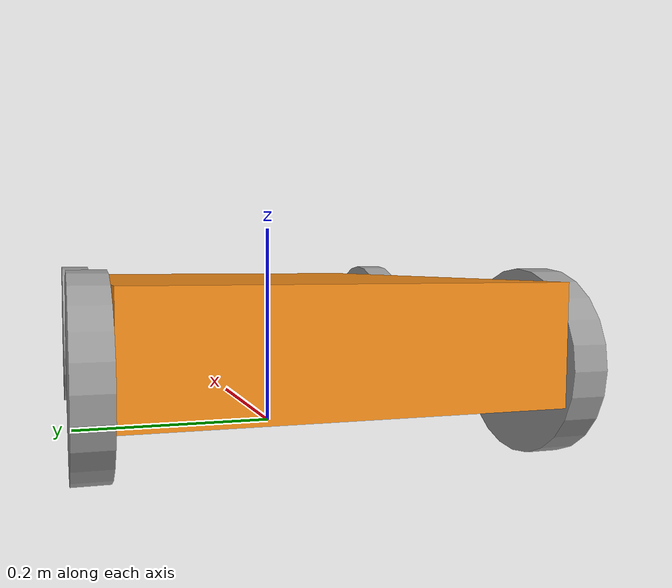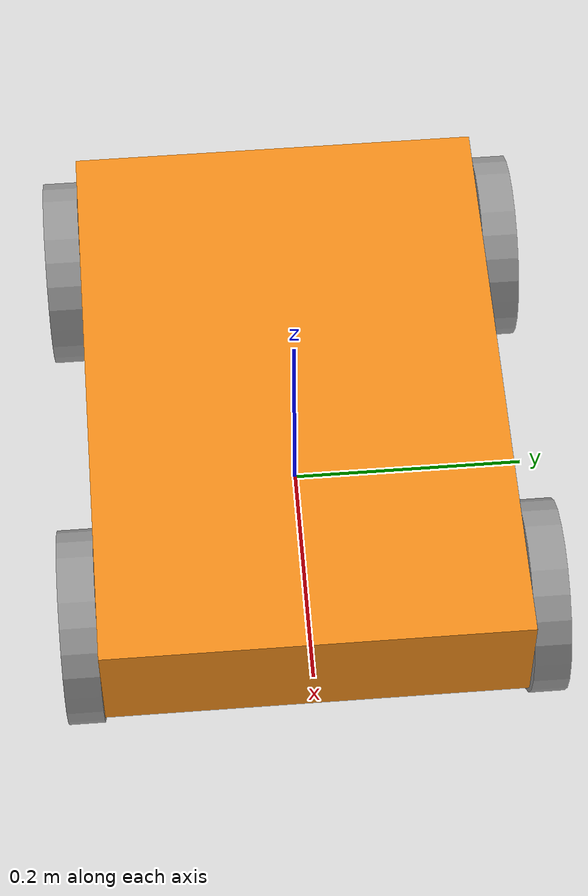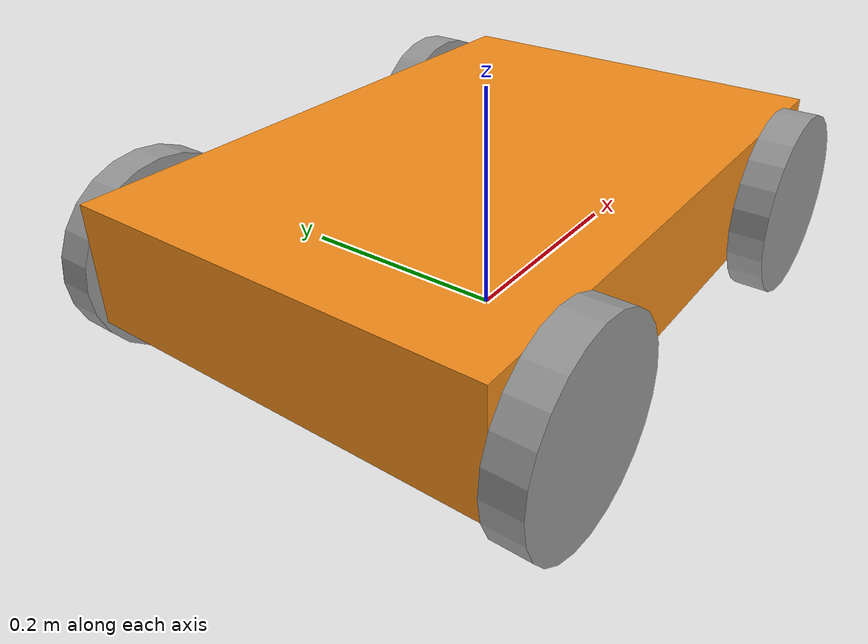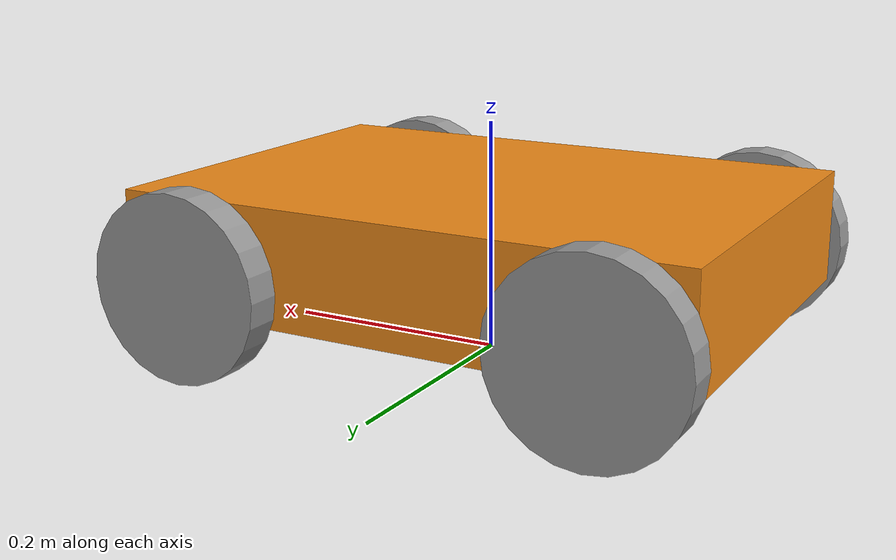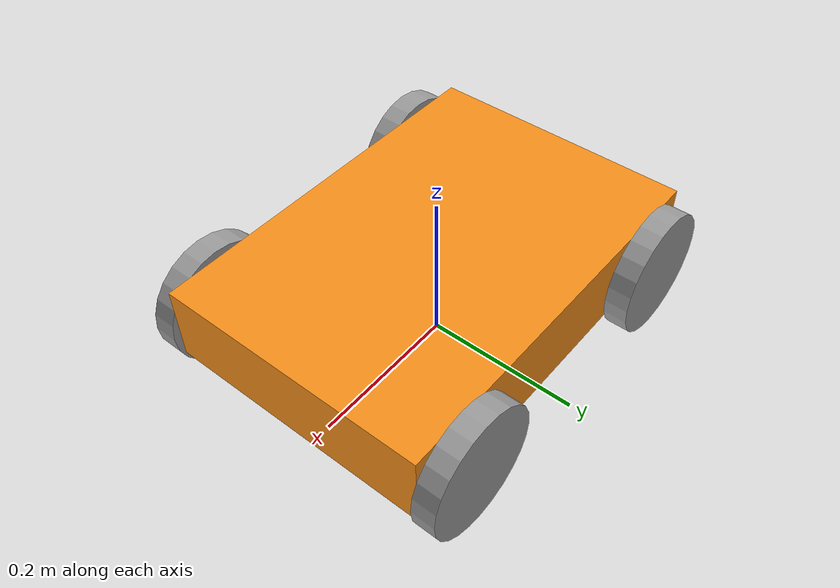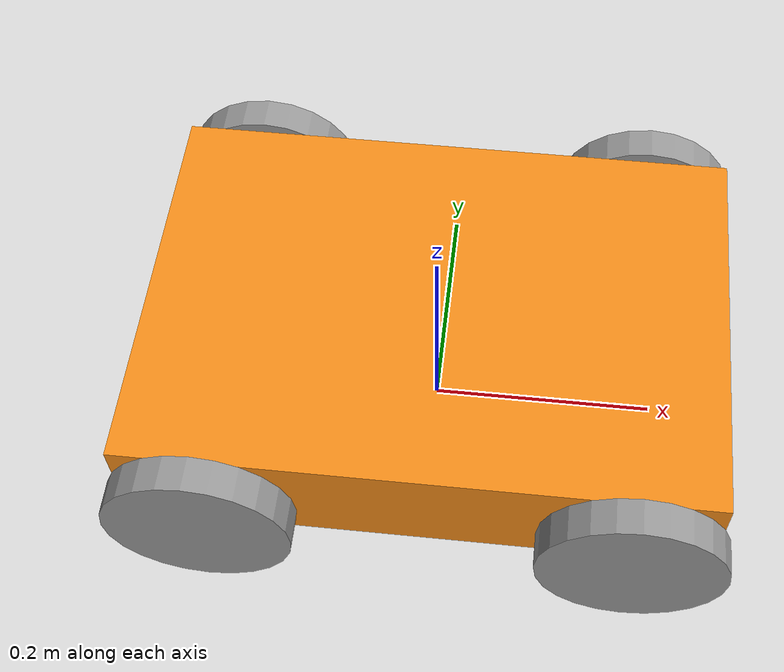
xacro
<?xml version="1.0"?>

<robot xmlns:xacro ="http://www.ros.org/wiki/xacro">

     <!-- Robot Properties -->

    <xacro:property name="base_length" value="0.5"/>  lenght of base divided by 10
    <xacro:property name="base_width" value="0.35"/> width of base divided by 10
    <xacro:property name="base_height" value="0.1"/>  height of base  divided by 10
    <xacro:property name="radius_wheels" value="0.08"/>
    <xacro:property name="thick_wheels" value="0.03"/>
    <xacro:property name="wheel_joint_hieght" value="0.03"/>

    <!-- Base Footprint -->
    <link name="base_footprint"/>

      <!-- Base Link -->
    <link name="base_link">
        <visual>
            <geometry>
                <box size="${base_length} ${base_width} ${base_height}"></box>
            </geometry>
            <material name="orange"/>
            <origin xyz="0 0 ${base_height/2.0}" rpy="0 0 0" />
        </visual>
        <collision>
            <geometry>
                <box size="${base_length} ${base_width} ${base_height}"></box>
            </geometry>
            <material name="orange"/>
            <origin xyz="0 0 ${base_height/2.0}" rpy="0 0 0" />
        </collision>
        <xacro:box_inertia m="5.0" l="${base_length}" w="${base_width}" h="${base_height}"
                            xyz="0 0 ${base_height/2.0}" rpy="0 0 0"/>
    </link>

    <!-- Wheel Macro -->
    <xacro:macro name="wheel_link" params="prefix">
        <link name="${prefix}_wheel_link">
            <visual>
                <geometry>
                    <cylinder radius="${radius_wheels}" length="${thick_wheels}" />
                </geometry>
                <origin xyz="0 0 0" rpy="${pi/2.0} 0 0"/>  rotat wheel 180 degree about X axis
                <material name="gray"/>
            </visual>
            <collision>
                <geometry>
                    <cylinder radius="${radius_wheels}" length="${thick_wheels}" />
                </geometry>
                <origin xyz="0 0 0" rpy="${pi/2.0} 0 0"/>  rotat wheel 180 degree about X axis
            </collision>
            <xacro:wheel_inertia m="0.5" r="${radius_wheels}" h="${thick_wheels}"
                                 xyz="0 0 0" rpy="${pi/2.0} 0 0"/>
        </link>
    </xacro:macro>

    <!-- Wheel Links -->
    <xacro:wheel_link prefix="right_r"/>
    <xacro:wheel_link prefix="right_f"/>
    <xacro:wheel_link prefix="left_r"/>
    <xacro:wheel_link prefix="left_f"/>

    <!-- Fixed Joint for Base -->
    <joint name="base_joint" type="fixed">
        <parent link="base_footprint"/>
        <child link="base_link"/>
        <origin xyz="0 0 0.05" rpy="0 0 0"/>  0.05 diffrent  between
    </joint>

    <!-- Continuous Joints for Wheels -->

    <!-- Rear Right Wheel -->
    <joint name="base_right_wheel_r_joint" type="continuous">
        <parent link="base_link"/>
        <child link ="right_r_wheel_link"/>
        <origin xyz="-0.18 -0.19 ${wheel_joint_hieght}" rpy="0 0 0"/> ///distance between center and wheel
        <axis xyz="0 1 0"/>
    </joint>

<!-- Front Right Wheel -->
    <joint name="base_right_wheel_f_joint" type="continuous">
        <parent link="base_link"/>
        <child link="right_f_wheel_link"/>
        <origin xyz="0.18 -0.19 ${wheel_joint_hieght}" rpy="0 0 0"/>
        <axis xyz="0 1 0"/>
    </joint>

<!-- Rear Left Wheel -->
    <joint name="base_left_wheel_r_joint" type="continuous">
        <parent link="base_link"/>
        <child link="left_r_wheel_link"/>
        <origin xyz="-0.18 0.19 ${wheel_joint_hieght}" rpy="0 0 0"/>
        <axis xyz="0 1 0"/>
    </joint>

<!-- Front Left Wheel -->
    <joint name="base_left_wheel_f_joint" type="continuous">
        <parent link="base_link"/>
        <child link="left_f_wheel_link"/>
        <origin xyz="0.18 0.19 ${wheel_joint_hieght}" rpy="0 0 0"/>
        <axis xyz="0 1 0"/>
    </joint>

</robot>
